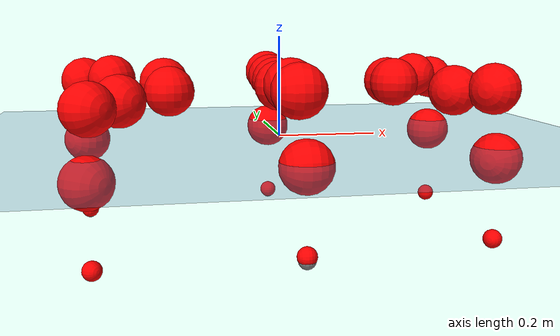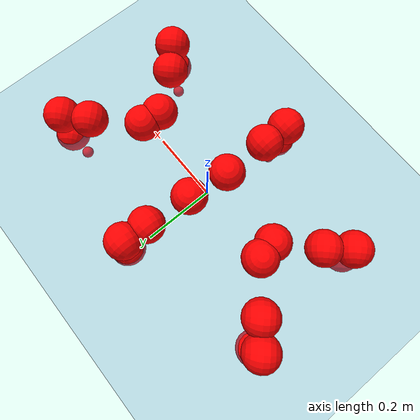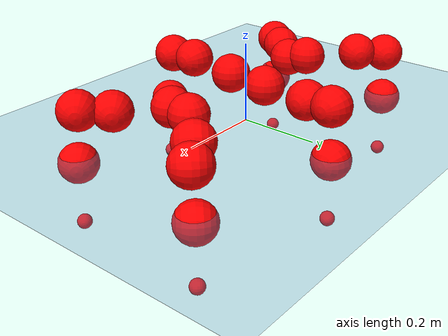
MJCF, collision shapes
<mujoco model="Golem">
  <compiler angle="radian" assetdir="assets" balanceinertia="true" inertiafromgeom="false"/>

  <option timestep="0.005" density="1.2" viscosity="2e-05"/>

  <size nkey="1"/>

  <visual>
    <quality shadowsize="8192"/>
    <map shadowclip="0.5"/>
  </visual>

  <default>
    <default class="/">
      <joint armature="0.01" damping="0.01" frictionloss="0.01"/>
      <geom contype="0" conaffinity="0" group="1" solref="-1000 -80"/>
      <site size="0.01 0.005 0.005" group="5"/>
      <general forcelimited="true" biastype="affine" gainprm="25" biasprm="0 -25 -0.5"/>
      <default class="visual">
        <geom type="mesh" group="2"/>
      </default>
      <default class="collision">
        <geom group="3"/>
      </default>
      <default class="foot">
        <geom size="0.01 0 0" condim="6" group="4" priority="1" solimp="0.015 1 0.01"/>
      </default>
      <default class="reward_collision_sphere">
        <geom group="5" rgba="1 0 0 1"/>
      </default>
    </default>
  </default>

  <asset>
    <texture type="skybox" colorspace="auto" name="//unnamed_texture_0" builtin="gradient" rgb1="0.95 0.95 0.95" rgb2="0.95 0.95 0.95" width="100" height="600"/>
    <texture type="2d" colorspace="auto" name="texplane" builtin="checker" rgb1="0.345 0.575 0.748" rgb2="0.345 0.575 0.748" markrgb="1 1 1" width="512" height="512"/>
    <material name="MatPlane" class="/" texture="texplane" texuniform="true" texrepeat="2 2" specular="0.9"/>
    <mesh name="body" class="/" file="body.stl" scale="0.001 0.001 0.001"/>
    <mesh name="coxa" class="/" file="coxa.stl" scale="0.001 0.001 0.001"/>
    <mesh name="femur" class="/" file="femur.stl" scale="0.001 0.001 0.001"/>
    <mesh name="tibia" class="/" file="tibia.stl" scale="0.001 0.001 0.001"/>
    <mesh name="tarsus" class="/" file="tarsus.stl" scale="0.001 0.001 0.001"/>
  </asset>

  <worldbody>
    <geom name="floor" class="/" size="100 100 0.125" type="plane" group="0" material="MatPlane"/>
    <light name="toplight_shadow" class="/" pos="0 0 5" dir="0.0990148 0.0990148 -0.990148" type="directional" ambient="0.04 0.04 0.04" diffuse="0.55 0.55 0.55" specular="0.12 0.12 0.12"/>
    <light name="toplight_fill" class="/" pos="0 0 5" dir="0.0990148 0.0990148 -0.990148" type="directional" castshadow="false" ambient="0.04 0.04 0.04" diffuse="0.3 0.3 0.3" specular="0.08 0.08 0.08"/>
    <body name="trunk" pos="-0.000113963 0.000534768 0.0097642" quat="0.999998 -0.00197801 -0.000363508 7.45486e-05">
      <inertial pos="0.00124677 -0.00768077 0.00789467" quat="0.99986 -0.000503544 0.00540227 -0.0158592" mass="5.89948" diaginertia="0.0604142 0.00176702 0.0560303"/>
      <joint name="//unnamed_joint_0" type="free"/>
      <geom name="//unnamed_geom_1" class="/" pos="0 0 0.0928323" quat="1 0 0 0" type="mesh" rgba="0.9 0.9 0.9 1" mesh="body"/>
      <site name="imu" class="/" pos="0.209362 -0.00182256 0.103016" size="0.0121069"/>
      <camera name="track" class="/" pos="0 -1.43038 0" quat="0.707107 0.707107 0 0" mode="trackcom"/>
      <camera name="ego_camera" class="/" pos="0.190629 0 0.145051" quat="-0.5 -0.5 0.5 0.5"/>
      <body name="coxa_RR" pos="-0.251544 -0.0621328 0.0874406" quat="0.386209 0.00421055 0.000822397 -0.922401">
        <inertial pos="0.0109411 0.00560691 0.00110663" quat="0.999081 -0.0260323 -0.00502348 -0.0336652" mass="0.332564" diaginertia="0.0676257 0.00185222 0.071457"/>
        <joint name="coxa_joint_RR" class="/" pos="0 0 0" axis="0.000913957 -0.00213081 -0.999997" stiffness="0.00658703" range="-3.05879 3.13629" armature="0.0131749" damping="0" frictionloss="0.00689027"/>
        <geom name="//unnamed_geom_2" class="/" type="mesh" rgba="0.2 0.2 0.2 1" mesh="coxa"/>
        <geom name="//unnamed_geom_3" class="reward_collision_sphere" size="0.0484277" pos="-0.0439913 0 0"/>
        <body name="femur_RR" pos="0.0842375 -0.00127855 -0.00664905" quat="0.499718 -0.500042 0.500304 0.499936">
          <inertial pos="-0.00165246 0.00311839 -0.00963909" quat="0.999998 0.00157928 0.00107285 -0.000425331" mass="0.363946" diaginertia="0.0702386 0.00191666 0.0739823"/>
          <joint name="femur_joint_RR" class="/" pos="0 0 0" axis="-0.0429914 -0.00418866 -0.999067" stiffness="0.00536365" range="-3.17396 3.10841" armature="0.0144853" damping="0.0306909" frictionloss="0.0133275"/>
          <geom name="//unnamed_geom_4" class="/" type="mesh" rgba="0.9 0.9 0.9 1" mesh="femur"/>
          <geom name="//unnamed_geom_5" class="reward_collision_sphere" size="0.0484277"/>
          <body name="tibia_RR" pos="0.00529224 -0.0772798 0.00572768" quat="-0.000126838 1 -4.97942e-05 -1.68332e-05">
            <inertial pos="0.00376402 -0.00875172 0.00972118" quat="0.999036 -0.0321976 0.0186583 0.0232879" mass="0.368354" diaginertia="0.0788893 0.00201623 0.0674426"/>
            <joint name="tibia_joint_RR" class="/" pos="0 0 0" axis="0.00202103 0.00226388 0.999995" stiffness="0.00639901" range="-3.14179 3.27452" armature="0.0111239" damping="0" frictionloss="0.0124629"/>
            <geom name="//unnamed_geom_6" class="/" type="mesh" rgba="0.2 0.2 0.2 1" mesh="tibia"/>
            <geom name="//unnamed_geom_7" class="reward_collision_sphere" size="0.0484277"/>
            <body name="tarsus_RR" pos="0.126163 0.00918552 0.000793395" quat="0.999989 0.000709636 -0.0015526 -0.00428711">
              <inertial pos="0.0855791 0.0106638 -0.0029996" quat="0.498271 0.501132 0.499331 0.50126" mass="0.371873" diaginertia="0.06694 0.00157617 0.0613113"/>
              <joint name="tarsus_joint_RR" class="/" pos="0 0 0" axis="0.0133344 0.00192799 0.999909" stiffness="0.0114077" range="-3.13438 3.11527" armature="0.013292" damping="0.0386734" frictionloss="0.0120372"/>
              <geom name="//unnamed_geom_8" class="/" type="mesh" rgba="0.9 0.9 0.9 1" mesh="tarsus"/>
              <geom name="foot_1" class="foot" size="0.0120944" pos="0.164234 0 0" quat="0 -0.707107 0 0.707107"/>
              <geom name="//unnamed_geom_10" class="reward_collision_sphere" size="0.0484277"/>
              <geom name="//unnamed_geom_11" class="reward_collision_sphere" size="0.0181604" pos="0.157636 0 0"/>
              <site name="foot_1" class="foot" pos="0.164234 0 0" quat="0 -0.707107 0 0.707107" size="0.0121069"/>
            </body>
          </body>
        </body>
      </body>
      <body name="coxa_RM" pos="-0.0107189 -0.10097 0.0977346" quat="0.707263 0.00193773 0.000694381 -0.706948">
        <inertial pos="0.000980742 0.00551063 0.0116413" quat="0.999961 -0.00259402 -0.00822806 0.00199431" mass="0.378599" diaginertia="0.0804594 0.00226181 0.0672646"/>
        <joint name="coxa_joint_RM" class="/" pos="0 0 0" axis="0.000174795 0.00151307 -0.999999" range="-3.13689 3.13473" armature="0.0146898" damping="0.000694244" frictionloss="0.0086551"/>
        <geom name="//unnamed_geom_12" class="/" type="mesh" rgba="0.2 0.2 0.2 1" mesh="coxa"/>
        <geom name="//unnamed_geom_13" class="reward_collision_sphere" size="0.0484277" pos="-0.0439913 0 0"/>
        <body name="femur_RM" pos="0.080443 -0.00232141 0.0119419" quat="0.504754 -0.499103 0.497524 0.498587">
          <inertial pos="0.000740557 0.00557919 0.0017645" quat="0.998704 0.00404145 -0.0275043 -0.0426217" mass="0.347221" diaginertia="0.0601386 0.00195903 0.0628814"/>
          <joint name="femur_joint_RM" class="/" pos="0 0 0" axis="-0.00572006 -0.00974386 -0.999936" stiffness="0.00342291" range="-2.97582 2.97399" armature="0.00526424" damping="0" frictionloss="0.0111026"/>
          <geom name="//unnamed_geom_14" class="/" type="mesh" rgba="0.9 0.9 0.9 1" mesh="femur"/>
          <geom name="//unnamed_geom_15" class="reward_collision_sphere" size="0.0484277"/>
          <body name="tibia_RM" pos="0.00398793 -0.0740046 0.000196443" quat="1.23615e-05 1 -0.000684219 0.00019548">
            <inertial pos="0.00237594 0.00217055 0.00934636" quat="0.999212 0.0274225 0.0261956 -0.011752" mass="0.437285" diaginertia="0.072149 0.0020546 0.0626045"/>
            <joint name="tibia_joint_RM" class="/" pos="0 0 0" axis="0.000860417 0.000875338 0.999999" range="-2.98126 3.30513" armature="0.0172783" damping="0.0287288" frictionloss="0.0135559"/>
            <geom name="//unnamed_geom_16" class="/" type="mesh" rgba="0.2 0.2 0.2 1" mesh="tibia"/>
            <geom name="//unnamed_geom_17" class="reward_collision_sphere" size="0.0484277"/>
            <body name="tarsus_RM" pos="0.127215 0.00793554 -0.0106818" quat="0.999999 0.000574525 0.000701599 -0.00140818">
              <inertial pos="0.0915794 0.00145571 0.00366091" quat="0.500984 0.527798 0.48638 0.48361" mass="0.354387" diaginertia="0.0678822 0.00187348 0.0644155"/>
              <joint name="tarsus_joint_RM" class="/" pos="0 0 0" axis="0.00067759 -0.00346484 0.999994" stiffness="0.0251651" range="-3.11376 2.90027" armature="0.0119411" damping="0.0557913" frictionloss="0.0122777"/>
              <geom name="//unnamed_geom_18" class="/" type="mesh" rgba="0.9 0.9 0.9 1" mesh="tarsus"/>
              <geom name="foot_2" class="foot" size="0.0161424" pos="0.164234 0 0" quat="0 -0.707107 0 0.707107"/>
              <geom name="//unnamed_geom_20" class="reward_collision_sphere" size="0.0484277"/>
              <geom name="//unnamed_geom_21" class="reward_collision_sphere" size="0.0181604" pos="0.157636 0 0"/>
              <site name="foot_2" class="foot" pos="0.164234 0 0" quat="0 -0.707107 0 0.707107" size="0.0121069"/>
            </body>
          </body>
        </body>
      </body>
      <body name="coxa_RF" pos="0.263472 -0.0573518 0.0979473" quat="0.924503 -0.000788863 0.00421878 -0.381151">
        <inertial pos="-0.00946747 0.00915687 0.000321049" quat="0.999992 -0.00121721 0.0038347 -0.000599447" mass="0.359217" diaginertia="0.0614148 0.00187261 0.0664165"/>
        <joint name="coxa_joint_RF" class="/" pos="0 0 0" axis="0.0433403 -0.0024786 -0.999057" range="-3.14451 3.13172" armature="0.0111093" damping="0.0345382" frictionloss="0.0139537"/>
        <geom name="//unnamed_geom_22" class="/" type="mesh" rgba="0.2 0.2 0.2 1" mesh="coxa"/>
        <geom name="//unnamed_geom_23" class="reward_collision_sphere" size="0.0484277" pos="-0.0439913 0 0"/>
        <body name="femur_RF" pos="0.0881939 -0.0119669 -0.00828157" quat="0.505074 -0.498724 0.498953 0.497212">
          <inertial pos="0.000281128 -0.00125266 0.00364911" quat="0.999676 -0.0183152 -0.00940415 0.0149489" mass="0.369623" diaginertia="0.0713651 0.00197598 0.0661154"/>
          <joint name="femur_joint_RF" class="/" pos="0 0 0" axis="0.00817687 -0.00519735 -0.999953" stiffness="0.0324105" range="-3.22506 3.04092" armature="0.0113752" damping="0" frictionloss="0.0110659"/>
          <geom name="//unnamed_geom_24" class="/" type="mesh" rgba="0.9 0.9 0.9 1" mesh="femur"/>
          <geom name="//unnamed_geom_25" class="reward_collision_sphere" size="0.0484277"/>
          <body name="tibia_RF" pos="-0.00634929 -0.0767905 0.00341749" quat="-6.60429e-05 1 2.5293e-05 0.000160546">
            <inertial pos="-0.00205039 0.00763269 0.00139938" quat="0.99986 0.00127334 0.0112069 0.01237" mass="0.38758" diaginertia="0.0763881 0.00209508 0.0646095"/>
            <joint name="tibia_joint_RF" class="/" pos="0 0 0" axis="0.000536312 -0.00904704 0.999959" stiffness="0.0384141" range="-3.11451 3.30166" armature="0.0116312" damping="0.0707421" frictionloss="0.0121708"/>
            <geom name="//unnamed_geom_26" class="/" type="mesh" rgba="0.2 0.2 0.2 1" mesh="tibia"/>
            <geom name="//unnamed_geom_27" class="reward_collision_sphere" size="0.0484277"/>
            <body name="tarsus_RF" pos="0.130734 0.00924902 -0.00116181" quat="0.999995 -0.000662921 0.00181885 0.00262009">
              <inertial pos="0.0870549 0.00134463 -0.00137279" quat="0.499183 0.501499 0.498336 0.500976" mass="0.362763" diaginertia="0.0661969 0.00168458 0.0667627"/>
              <joint name="tarsus_joint_RF" class="/" pos="0 0 0" axis="-0.000332363 -8.37669e-05 1" range="-3.17916 3.14878" armature="0.011905" damping="0.00818964" frictionloss="0.0118473"/>
              <geom name="//unnamed_geom_28" class="/" type="mesh" rgba="0.9 0.9 0.9 1" mesh="tarsus"/>
              <geom name="foot_3" class="foot" size="0.011374" pos="0.164234 0 0" quat="0 -0.707107 0 0.707107"/>
              <geom name="//unnamed_geom_30" class="reward_collision_sphere" size="0.0484277"/>
              <geom name="//unnamed_geom_31" class="reward_collision_sphere" size="0.0181604" pos="0.157636 0 0"/>
              <site name="foot_3" class="foot" pos="0.164234 0 0" quat="0 -0.707107 0 0.707107" size="0.0121069"/>
            </body>
          </body>
        </body>
      </body>
      <body name="coxa_LR" pos="-0.260448 0.0519939 0.100935" quat="0.38287 -1.64783e-05 -6.43436e-05 0.923802">
        <inertial pos="-0.00125926 0.00266356 0.0071749" quat="0.999451 -0.0169045 -0.0189505 -0.0212955" mass="0.419078" diaginertia="0.0767789 0.00192172 0.0724791"/>
        <joint name="coxa_joint_LR" class="/" pos="0 0 0" axis="0.0170897 -0.0358452 -0.999211" range="-3.16817 3.13437" armature="0.010246" damping="0.0125825" frictionloss="0.00764183"/>
        <geom name="//unnamed_geom_32" class="/" type="mesh" rgba="0.2 0.2 0.2 1" mesh="coxa"/>
        <geom name="//unnamed_geom_33" class="reward_collision_sphere" size="0.0484277" pos="-0.0439913 0 0"/>
        <body name="femur_LR" pos="0.0946197 0.0106879 0.00221784" quat="0.501474 -0.501669 0.497947 0.498899">
          <inertial pos="-0.00152726 0.0037883 0.0109562" quat="0.99975 -0.0182847 -0.0105884 0.00731161" mass="0.373352" diaginertia="0.0758747 0.00207992 0.0701094"/>
          <joint name="femur_joint_LR" class="/" pos="0 0 0" axis="-0.0378953 -0.0405611 0.998458" range="-3.11314 3.14786" armature="0.00871324" damping="0" frictionloss="0.0117877"/>
          <geom name="//unnamed_geom_34" class="/" type="mesh" rgba="0.9 0.9 0.9 1" mesh="femur"/>
          <geom name="//unnamed_geom_35" class="reward_collision_sphere" size="0.0484277"/>
          <body name="tibia_LR" pos="0.0074296 -0.07787 0.00618847" quat="0.000209315 1 0.000333707 -0.000294446">
            <inertial pos="-0.000646948 -0.00879702 -0.00171474" quat="0.999992 0.00312001 -0.000821892 -0.00241167" mass="0.331465" diaginertia="0.0710243 0.00171422 0.0537629"/>
            <joint name="tibia_joint_LR" class="/" pos="0 0 0" axis="-0.0185294 0.0567423 -0.998217" range="-3.29783 3.3797" armature="0.00515773" damping="0.0455043" frictionloss="0.00830795"/>
            <geom name="//unnamed_geom_36" class="/" type="mesh" rgba="0.2 0.2 0.2 1" mesh="tibia"/>
            <geom name="//unnamed_geom_37" class="reward_collision_sphere" size="0.0484277"/>
            <body name="tarsus_LR" pos="0.127913 0.00320486 0.00266053" quat="1 0.000198564 -0.000370618 0.000440352">
              <inertial pos="0.0770431 -0.000177047 0.0120561" quat="0.498642 0.500503 0.498804 0.502044" mass="0.352838" diaginertia="0.0610548 0.0018379 0.06297"/>
              <joint name="tarsus_joint_LR" class="/" pos="0 0 0" axis="0.0164434 0.00333056 -0.999859" stiffness="0.00229112" range="-3.24962 3.2391" armature="0.0165767" damping="0" frictionloss="0.0117948"/>
              <geom name="//unnamed_geom_38" class="/" type="mesh" rgba="0.9 0.9 0.9 1" mesh="tarsus"/>
              <geom name="foot_4" class="foot" size="0.012388" pos="0.164234 0 0" quat="0.707107 0 -0.707107 0"/>
              <geom name="//unnamed_geom_40" class="reward_collision_sphere" size="0.0484277"/>
              <geom name="//unnamed_geom_41" class="reward_collision_sphere" size="0.0181604" pos="0.157636 0 0"/>
              <site name="foot_4" class="foot" pos="0.164234 0 0" quat="0.707107 0 -0.707107 0" size="0.0121069"/>
            </body>
          </body>
        </body>
      </body>
      <body name="coxa_LM" pos="0.00134135 0.101809 0.0984853" quat="0.707223 0.00040674 -0.000297987 0.706991">
        <inertial pos="-0.000413491 0.0094539 -0.0113192" quat="0.999791 -0.0198872 -0.00406188 0.00250225" mass="0.333934" diaginertia="0.0705982 0.00188153 0.0661139"/>
        <joint name="coxa_joint_LM" class="/" pos="0 0 0" axis="0.0330407 -0.0222919 -0.999205" stiffness="0.00326757" range="-3.1648 3.1887" armature="0.0189342" damping="0" frictionloss="0.0118963"/>
        <geom name="//unnamed_geom_42" class="/" type="mesh" rgba="0.2 0.2 0.2 1" mesh="coxa"/>
        <geom name="//unnamed_geom_43" class="reward_collision_sphere" size="0.0484277" pos="-0.0439913 0 0"/>
        <body name="femur_LM" pos="0.0841901 -0.0102605 0.000299407" quat="0.499523 -0.500103 0.500412 0.499962">
          <inertial pos="0.0107549 -0.00545836 0.00577684" quat="0.999972 0.0063592 -0.00386489 -0.0011985" mass="0.381482" diaginertia="0.0780297 0.00197238 0.0711444"/>
          <joint name="femur_joint_LM" class="/" pos="0 0 0" axis="0.00971 0.0483435 0.998784" range="-3.12557 3.13066" armature="0.0121517" damping="0.0257653" frictionloss="0.00752142"/>
          <geom name="//unnamed_geom_44" class="/" type="mesh" rgba="0.9 0.9 0.9 1" mesh="femur"/>
          <geom name="//unnamed_geom_45" class="reward_collision_sphere" size="0.0484277"/>
          <body name="tibia_LM" pos="-0.00455627 -0.0689541 -0.00307734" quat="-0.000334462 1 6.60985e-05 -0.000776346">
            <inertial pos="-0.000562422 0.00152799 -0.00686784" quat="0.999279 -0.0361184 -0.00169252 -0.0115816" mass="0.399212" diaginertia="0.0666119 0.00189541 0.0704787"/>
            <joint name="tibia_joint_LM" class="/" pos="0 0 0" axis="-0.00423235 0.00257699 -0.999988" range="-3.12227 2.95924" armature="0.0124517" damping="0.0279347" frictionloss="0.0099291"/>
            <geom name="//unnamed_geom_46" class="/" type="mesh" rgba="0.2 0.2 0.2 1" mesh="tibia"/>
            <geom name="//unnamed_geom_47" class="reward_collision_sphere" size="0.0484277"/>
            <body name="tarsus_LM" pos="0.130311 0.00933132 0.00404758" quat="1 -3.1761e-05 -4.49887e-05 5.79909e-06">
              <inertial pos="0.0777852 0.00264464 0.00232273" quat="0.499971 0.499885 0.499036 0.501106" mass="0.355112" diaginertia="0.0656674 0.00181983 0.0576316"/>
              <joint name="tarsus_joint_LM" class="/" pos="0 0 0" axis="0.00603759 -0.0130025 -0.999897" stiffness="0.0329678" range="-3.17023 3.1065" armature="0.0130792" damping="0.0473433" frictionloss="0.0129615"/>
              <geom name="//unnamed_geom_48" class="/" type="mesh" rgba="0.9 0.9 0.9 1" mesh="tarsus"/>
              <geom name="foot_5" class="foot" size="0.012813" pos="0.164234 0 0" quat="0.707107 0 -0.707107 0"/>
              <geom name="//unnamed_geom_50" class="reward_collision_sphere" size="0.0484277"/>
              <geom name="//unnamed_geom_51" class="reward_collision_sphere" size="0.0181604" pos="0.157636 0 0"/>
              <site name="foot_5" class="foot" pos="0.164234 0 0" quat="0.707107 0 -0.707107 0" size="0.0121069"/>
            </body>
          </body>
        </body>
      </body>
      <body name="coxa_LF" pos="0.267448 0.0591632 0.0972097" quat="0.923955 -9.11017e-05 -0.000214658 0.382501">
        <inertial pos="-0.00722874 -0.001905 -0.00209805" quat="0.998781 0.0424216 0.0241601 0.00734542" mass="0.364102" diaginertia="0.0580831 0.00185591 0.0642201"/>
        <joint name="coxa_joint_LF" class="/" pos="0 0 0" axis="0.000776501 0.00397347 -0.999992" range="-3.12985 3.31877" armature="0.0146634" damping="0.0182287" frictionloss="0.0113162"/>
        <geom name="//unnamed_geom_52" class="/" type="mesh" rgba="0.2 0.2 0.2 1" mesh="coxa"/>
        <geom name="//unnamed_geom_53" class="reward_collision_sphere" size="0.0484277" pos="-0.0439913 0 0"/>
        <body name="femur_LF" pos="0.096697 0.00456083 0.0034667" quat="0.500908 -0.499988 0.499128 0.499975">
          <inertial pos="0.00805995 -0.00684905 -0.00224571" quat="0.999874 -0.0136904 0.000790286 -0.00796968" mass="0.365329" diaginertia="0.0750145 0.00191158 0.0641926"/>
          <joint name="femur_joint_LF" class="/" pos="0 0 0" axis="0.0348504 -0.0338981 0.998817" stiffness="0.0248979" range="-2.95479 3.16635" armature="0.0117733" damping="0.0370763" frictionloss="0.012059"/>
          <geom name="//unnamed_geom_54" class="/" type="mesh" rgba="0.9 0.9 0.9 1" mesh="femur"/>
          <geom name="//unnamed_geom_55" class="reward_collision_sphere" size="0.0484277"/>
          <body name="tibia_LF" pos="0.0102372 -0.0796954 -0.00917405" quat="-0.00105317 0.999994 0.000222207 -0.00314863">
            <inertial pos="0.0077947 0.000856272 -0.000239716" quat="0.998239 0.00346788 0.058071 0.011585" mass="0.307153" diaginertia="0.0726918 0.00188122 0.0657571"/>
            <joint name="tibia_joint_LF" class="/" pos="0 0 0" axis="0.00170516 -0.00124867 -0.999998" stiffness="0.0162039" range="-3.14606 3.06526" armature="0.0134312" damping="0.0437313" frictionloss="0.0120921"/>
            <geom name="//unnamed_geom_56" class="/" type="mesh" rgba="0.2 0.2 0.2 1" mesh="tibia"/>
            <geom name="//unnamed_geom_57" class="reward_collision_sphere" size="0.0484277"/>
            <body name="tarsus_LF" pos="0.125201 0.00768277 -0.005772" quat="1 -2.92411e-05 -2.02377e-05 -5.51479e-05">
              <inertial pos="0.0930552 0.00056854 0.0051365" quat="0.501638 0.49922 0.502788 0.496329" mass="0.445396" diaginertia="0.0749904 0.00213046 0.0712736"/>
              <joint name="tarsus_joint_LF" class="/" pos="0 0 0" axis="0.00244966 -0.0128411 -0.999915" stiffness="0.0250343" range="-3.11376 3.04996" armature="0.014736" damping="0" frictionloss="0.0131626"/>
              <geom name="//unnamed_geom_58" class="/" type="mesh" rgba="0.9 0.9 0.9 1" mesh="tarsus"/>
              <geom name="foot_6" class="foot" size="0.00921488" pos="0.164234 0 0" quat="0.707107 0 -0.707107 0"/>
              <geom name="//unnamed_geom_60" class="reward_collision_sphere" size="0.0484277"/>
              <geom name="//unnamed_geom_61" class="reward_collision_sphere" size="0.0181604" pos="0.157636 0 0"/>
              <site name="foot_6" class="foot" pos="0.164234 0 0" quat="0.707107 0 -0.707107 0" size="0.0121069"/>
            </body>
          </body>
        </body>
      </body>
    </body>
  </worldbody>

  <contact>
    <pair class="/" geom1="floor" geom2="foot_1" name="//unnamed_contact_0"/>
    <pair class="/" geom1="floor" geom2="foot_2" name="//unnamed_contact_1"/>
    <pair class="/" geom1="floor" geom2="foot_3" name="//unnamed_contact_2"/>
    <pair class="/" geom1="floor" geom2="foot_4" name="//unnamed_contact_3"/>
    <pair class="/" geom1="floor" geom2="foot_5" name="//unnamed_contact_4"/>
    <pair class="/" geom1="floor" geom2="foot_6" name="//unnamed_contact_5"/>
  </contact>

  <actuator>
    <general name="coxa_joint_RR" class="/" joint="coxa_joint_RR" forcerange="-8.37514 8.37514" gainprm="28.9115" biasprm="0 -28.9115 -0.533623"/>
    <general name="femur_joint_RR" class="/" joint="femur_joint_RR" forcerange="-6.94498 6.94498" gainprm="28.9115" biasprm="0 -28.9115 -0.533623"/>
    <general name="tibia_joint_RR" class="/" joint="tibia_joint_RR" forcerange="-11.7122 11.7122" gainprm="28.9115" biasprm="0 -28.9115 -0.533623"/>
    <general name="tarsus_joint_RR" class="/" joint="tarsus_joint_RR" forcerange="-7.8412 7.8412" gainprm="28.9115" biasprm="0 -28.9115 -0.533623"/>
    <general name="coxa_joint_RM" class="/" joint="coxa_joint_RM" forcerange="-4.86527 4.86527" gainprm="28.9115" biasprm="0 -28.9115 -0.533623"/>
    <general name="femur_joint_RM" class="/" joint="femur_joint_RM" forcerange="-8.32646 8.32646" gainprm="28.9115" biasprm="0 -28.9115 -0.533623"/>
    <general name="tibia_joint_RM" class="/" joint="tibia_joint_RM" forcerange="-7.76661 7.76661" gainprm="28.9115" biasprm="0 -28.9115 -0.533623"/>
    <general name="tarsus_joint_RM" class="/" joint="tarsus_joint_RM" forcerange="-11.735 11.735" gainprm="28.9115" biasprm="0 -28.9115 -0.533623"/>
    <general name="coxa_joint_RF" class="/" joint="coxa_joint_RF" forcerange="-6.19378 6.19378" gainprm="28.9115" biasprm="0 -28.9115 -0.533623"/>
    <general name="femur_joint_RF" class="/" joint="femur_joint_RF" forcerange="-8.73026 8.73026" gainprm="28.9115" biasprm="0 -28.9115 -0.533623"/>
    <general name="tibia_joint_RF" class="/" joint="tibia_joint_RF" forcerange="-8.26596 8.26596" gainprm="28.9115" biasprm="0 -28.9115 -0.533623"/>
    <general name="tarsus_joint_RF" class="/" joint="tarsus_joint_RF" forcerange="-8.9654 8.9654" gainprm="28.9115" biasprm="0 -28.9115 -0.533623"/>
    <general name="coxa_joint_LR" class="/" joint="coxa_joint_LR" forcerange="-5.61354 5.61354" gainprm="28.9115" biasprm="0 -28.9115 -0.533623"/>
    <general name="femur_joint_LR" class="/" joint="femur_joint_LR" forcerange="-8.93097 8.93097" gainprm="28.9115" biasprm="0 -28.9115 -0.533623"/>
    <general name="tibia_joint_LR" class="/" joint="tibia_joint_LR" forcerange="-6.5199 6.5199" gainprm="28.9115" biasprm="0 -28.9115 -0.533623"/>
    <general name="tarsus_joint_LR" class="/" joint="tarsus_joint_LR" forcerange="-5.39644 5.39644" gainprm="28.9115" biasprm="0 -28.9115 -0.533623"/>
    <general name="coxa_joint_LM" class="/" joint="coxa_joint_LM" forcerange="-11.6314 11.6314" gainprm="28.9115" biasprm="0 -28.9115 -0.533623"/>
    <general name="femur_joint_LM" class="/" joint="femur_joint_LM" forcerange="-8.18228 8.18228" gainprm="28.9115" biasprm="0 -28.9115 -0.533623"/>
    <general name="tibia_joint_LM" class="/" joint="tibia_joint_LM" forcerange="-5.7466 5.7466" gainprm="28.9115" biasprm="0 -28.9115 -0.533623"/>
    <general name="tarsus_joint_LM" class="/" joint="tarsus_joint_LM" forcerange="-4.98319 4.98319" gainprm="28.9115" biasprm="0 -28.9115 -0.533623"/>
    <general name="coxa_joint_LF" class="/" joint="coxa_joint_LF" forcerange="-11.0799 11.0799" gainprm="28.9115" biasprm="0 -28.9115 -0.533623"/>
    <general name="femur_joint_LF" class="/" joint="femur_joint_LF" forcerange="-10.9868 10.9868" gainprm="28.9115" biasprm="0 -28.9115 -0.533623"/>
    <general name="tibia_joint_LF" class="/" joint="tibia_joint_LF" forcerange="-9.55221 9.55221" gainprm="28.9115" biasprm="0 -28.9115 -0.533623"/>
    <general name="tarsus_joint_LF" class="/" joint="tarsus_joint_LF" forcerange="-10.1513 10.1513" gainprm="28.9115" biasprm="0 -28.9115 -0.533623"/>
  </actuator>

  <sensor>
    <gyro site="imu" name="imu_angular_velocity"/>
    <velocimeter site="imu" name="imu_linear_velocity"/>
    <framelinvel objtype="site" objname="foot_1" name="foot_1_global_linear_velocity"/>
    <framelinvel objtype="site" objname="foot_2" name="foot_2_global_linear_velocity"/>
    <framelinvel objtype="site" objname="foot_3" name="foot_3_global_linear_velocity"/>
    <framelinvel objtype="site" objname="foot_4" name="foot_4_global_linear_velocity"/>
    <framelinvel objtype="site" objname="foot_5" name="foot_5_global_linear_velocity"/>
    <framelinvel objtype="site" objname="foot_6" name="foot_6_global_linear_velocity"/>
  </sensor>

  <keyframe>
    <key name="home" qpos="0 0 0.1457 1 0 0 0 0 0 0 0 0 0 0 0 0 0 0 0 0 0 0 0 0 0 0 0 0 0 0 0"/>
  </keyframe>
</mujoco>
